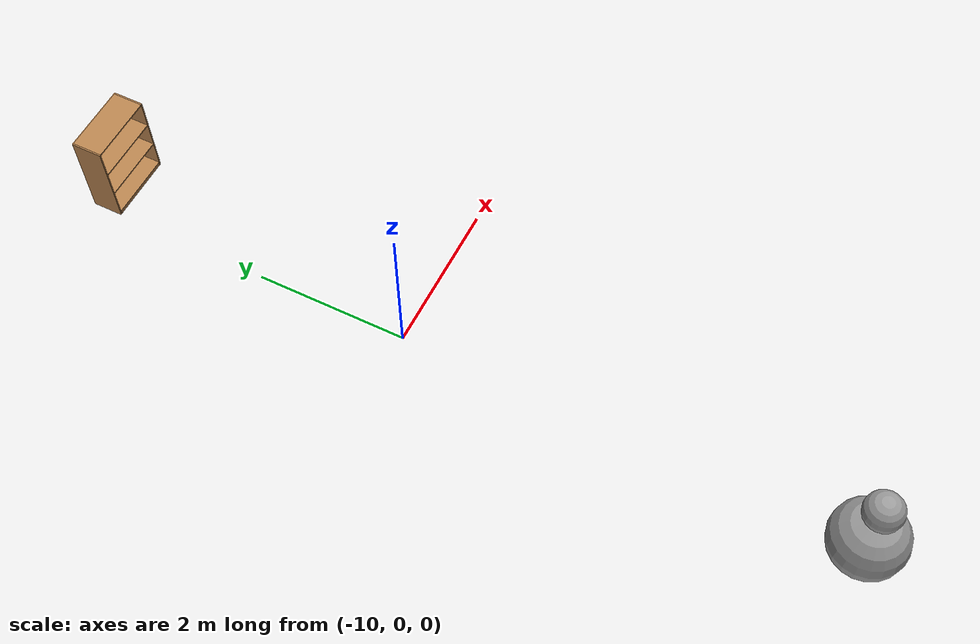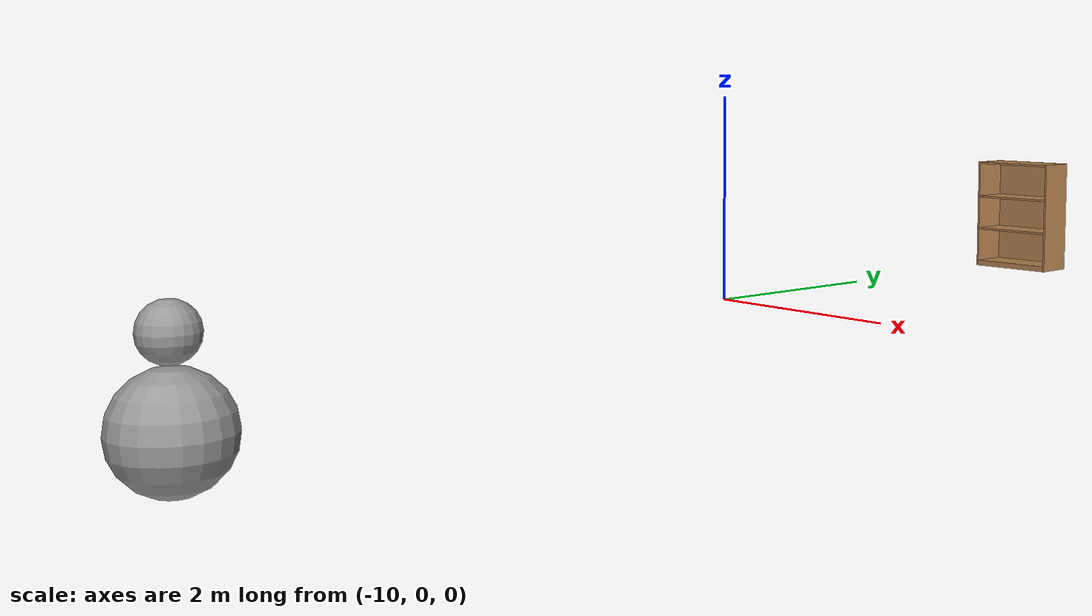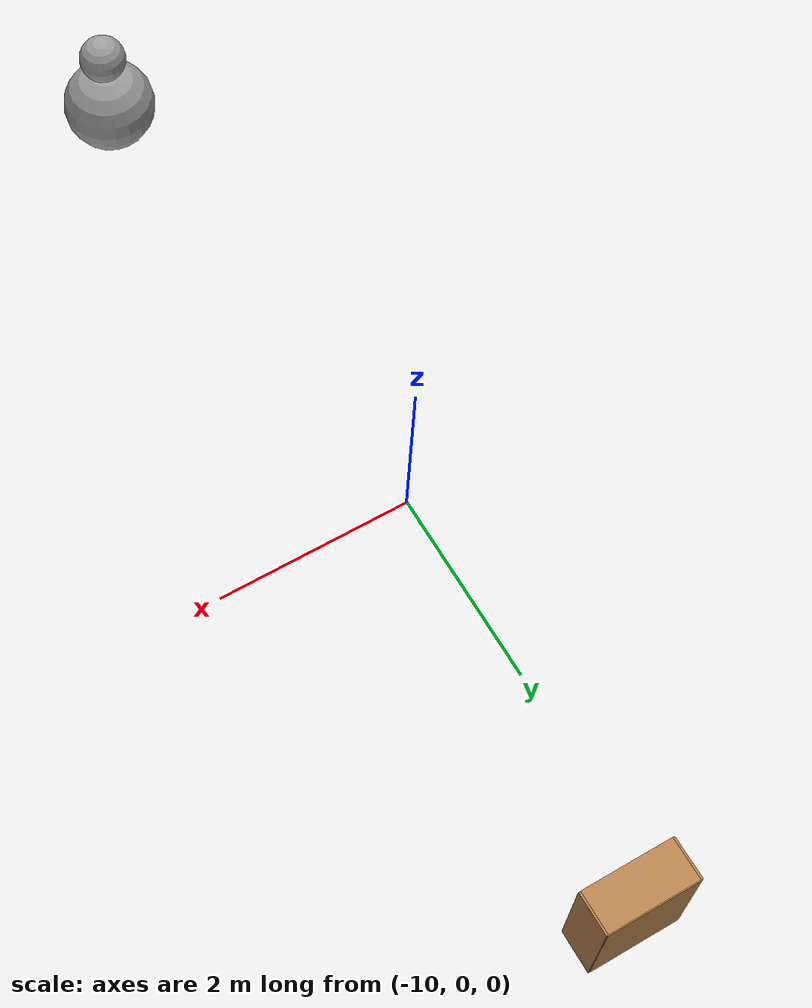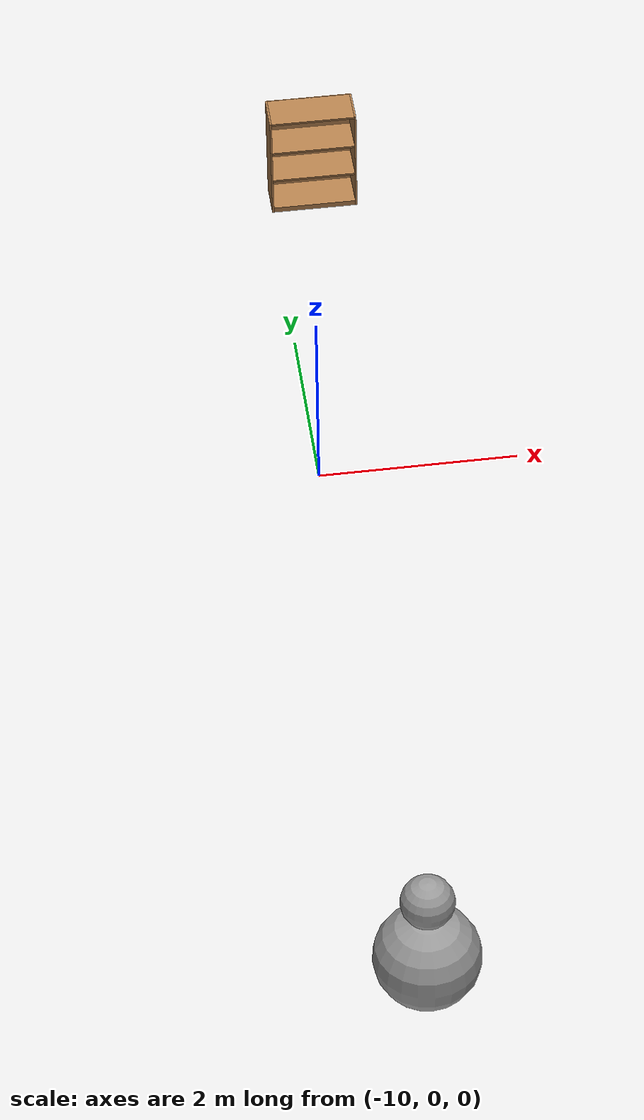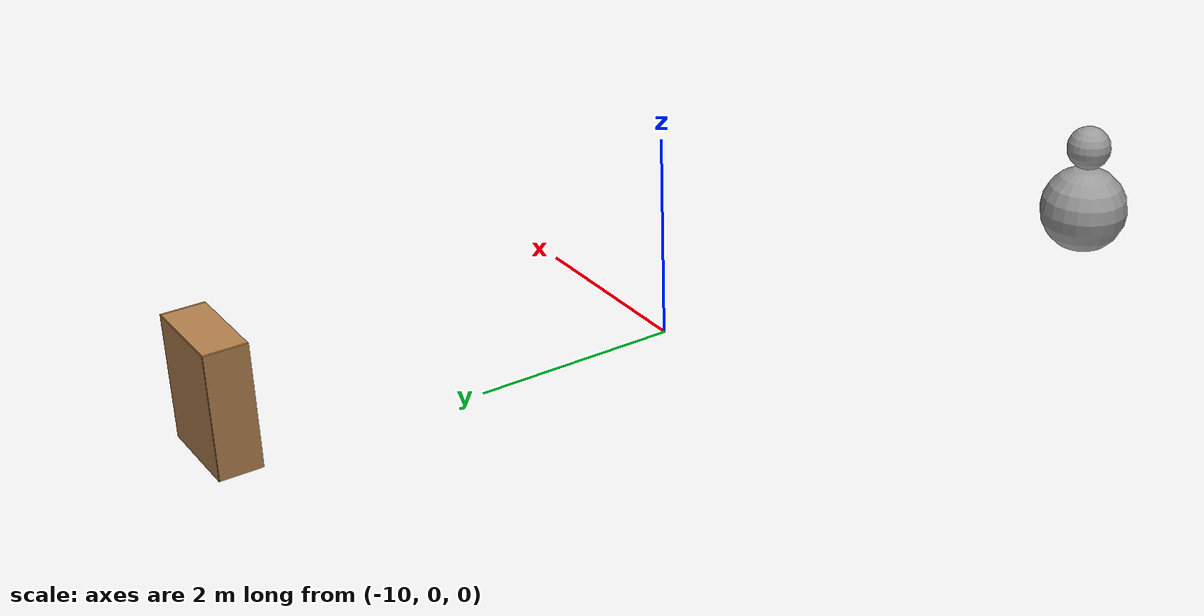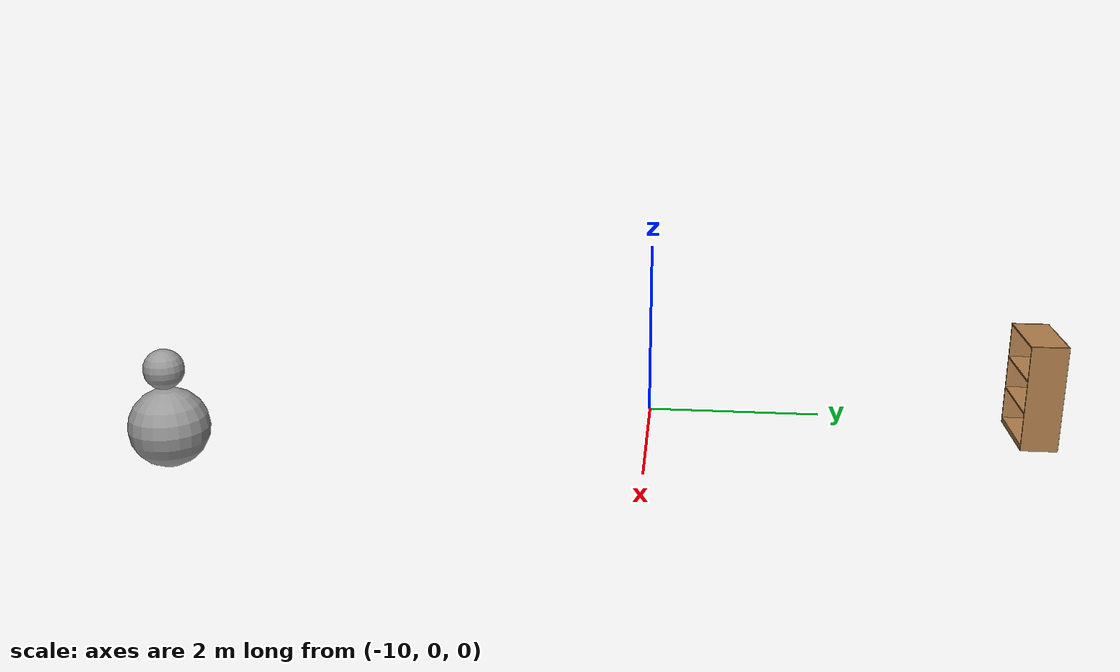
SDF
<?xml version='1.0'?>
<sdf version='1.6'>
  <model name='toppedSphere'>
    <model name='toppedSphere'>
      <model name='topped_balls'>
        <link name='link_0'>
          <inertial>
            <mass>1</mass>
            <inertia>
              <ixx>0.1</ixx>
              <ixy>0</ixy>
              <ixz>0</ixz>
              <iyy>0.1</iyy>
              <iyz>0</iyz>
              <izz>0.1</izz>
            </inertia>
            <pose frame=''>0 0 0 0 -0 0</pose>
          </inertial>
          <pose frame=''>0 0 -0.375 0 -0 0</pose>
          <self_collide>0</self_collide>
          <enable_wind>0</enable_wind>
          <kinematic>0</kinematic>
          <visual name='visual'>
            <pose frame=''>0 0 0 0 -0 0</pose>
            <geometry>
              <sphere>
                <radius>0.5</radius>
              </sphere>
            </geometry>
            <material>
              <lighting>1</lighting>
              <script>
                <uri>file://media/materials/scripts/gazebo.material</uri>
                <name>Gazebo/Grey</name>
              </script>
              <shader type='pixel'/>
              <emissive>0 0 0 1</emissive>
            </material>
            <transparency>0</transparency>
            <cast_shadows>1</cast_shadows>
          </visual>
          <collision name='collision'>
            <laser_retro>0</laser_retro>
            <max_contacts>10</max_contacts>
            <pose frame=''>0 0 0 0 -0 0</pose>
            <geometry>
              <sphere>
                <radius>0.5</radius>
              </sphere>
            </geometry>
            <surface>
              <friction>
                <ode>
                  <mu>1</mu>
                  <mu2>1</mu2>
                  <fdir1>0 0 0</fdir1>
                  <slip1>0</slip1>
                  <slip2>0</slip2>
                </ode>
                <torsional>
                  <coefficient>1</coefficient>
                  <patch_radius>0</patch_radius>
                  <surface_radius>0</surface_radius>
                  <use_patch_radius>1</use_patch_radius>
                  <ode>
                    <slip>0</slip>
                  </ode>
                </torsional>
              </friction>
              <bounce>
                <restitution_coefficient>0</restitution_coefficient>
                <threshold>1e+06</threshold>
              </bounce>
              <contact>
                <collide_without_contact>0</collide_without_contact>
                <collide_without_contact_bitmask>1</collide_without_contact_bitmask>
                <collide_bitmask>1</collide_bitmask>
                <ode>
                  <soft_cfm>0</soft_cfm>
                  <soft_erp>0.2</soft_erp>
                  <kp>1e+13</kp>
                  <kd>1</kd>
                  <max_vel>0.01</max_vel>
                  <min_depth>0</min_depth>
                </ode>
                <bullet>
                  <split_impulse>1</split_impulse>
                  <split_impulse_penetration_threshold>-0.01</split_impulse_penetration_threshold>
                  <soft_cfm>0</soft_cfm>
                  <soft_erp>0.2</soft_erp>
                  <kp>1e+13</kp>
                  <kd>1</kd>
                </bullet>
              </contact>
            </surface>
          </collision>
        </link>
        <link name='link_1'>
          <inertial>
            <mass>1</mass>
            <inertia>
              <ixx>0.1</ixx>
              <ixy>0</ixy>
              <ixz>0</ixz>
              <iyy>0.1</iyy>
              <iyz>0</iyz>
              <izz>0.1</izz>
            </inertia>
            <pose frame=''>0 0 0 0 -0 0</pose>
          </inertial>
          <pose frame=''>0 0 0.375 0 -0 0</pose>
          <gravity>1</gravity>
          <self_collide>0</self_collide>
          <kinematic>0</kinematic>
          <enable_wind>0</enable_wind>
          <visual name='visual'>
            <pose frame=''>0 0 0 0 -0 0</pose>
            <geometry>
              <sphere>
                <radius>0.25</radius>
              </sphere>
            </geometry>
            <material>
              <lighting>1</lighting>
              <script>
                <uri>file://media/materials/scripts/gazebo.material</uri>
                <name>Gazebo/Grey</name>
              </script>
              <shader type='pixel'>
                <normal_map>__default__</normal_map>
              </shader>
              <ambient>0.3 0.3 0.3 1</ambient>
              <diffuse>0.7 0.7 0.7 1</diffuse>
              <specular>0.01 0.01 0.01 1</specular>
              <emissive>0 0 0 1</emissive>
            </material>
            <transparency>0</transparency>
            <cast_shadows>1</cast_shadows>
          </visual>
          <collision name='collision'>
            <laser_retro>0</laser_retro>
            <max_contacts>10</max_contacts>
            <pose frame=''>0 0 0 0 -0 0</pose>
            <geometry>
              <sphere>
                <radius>0.25</radius>
              </sphere>
            </geometry>
            <surface>
              <friction>
                <ode>
                  <mu>1</mu>
                  <mu2>1</mu2>
                  <fdir1>0 0 0</fdir1>
                  <slip1>0</slip1>
                  <slip2>0</slip2>
                </ode>
                <torsional>
                  <coefficient>1</coefficient>
                  <patch_radius>0</patch_radius>
                  <surface_radius>0</surface_radius>
                  <use_patch_radius>1</use_patch_radius>
                  <ode>
                    <slip>0</slip>
                  </ode>
                </torsional>
              </friction>
              <bounce>
                <restitution_coefficient>0</restitution_coefficient>
                <threshold>1e+06</threshold>
              </bounce>
              <contact>
                <collide_without_contact>0</collide_without_contact>
                <collide_without_contact_bitmask>1</collide_without_contact_bitmask>
                <collide_bitmask>1</collide_bitmask>
                <ode>
                  <soft_cfm>0</soft_cfm>
                  <soft_erp>0.2</soft_erp>
                  <kp>1e+13</kp>
                  <kd>1</kd>
                  <max_vel>0.01</max_vel>
                  <min_depth>0</min_depth>
                </ode>
                <bullet>
                  <split_impulse>1</split_impulse>
                  <split_impulse_penetration_threshold>-0.01</split_impulse_penetration_threshold>
                  <soft_cfm>0</soft_cfm>
                  <soft_erp>0.2</soft_erp>
                  <kp>1e+13</kp>
                  <kd>1</kd>
                </bullet>
              </contact>
            </surface>
          </collision>
        </link>
        <joint name='link_0_JOINT_0' type='fixed'>
          <parent>link_0</parent>
          <child>link_1</child>
          <pose frame=''>0 0 0 0 -0 0</pose>
          <physics>
            <ode>
              <limit>
                <cfm>0</cfm>
                <erp>0.2</erp>
              </limit>
              <suspension>
                <cfm>0</cfm>
                <erp>0.2</erp>
              </suspension>
            </ode>
          </physics>
        </joint>
        <static>0</static>
        <allow_auto_disable>1</allow_auto_disable>
        <pose frame=''>-0 0 0 0 -0 0</pose>
      </model>
      <static>0</static>
      <allow_auto_disable>1</allow_auto_disable>
      <pose frame=''>-9.79218 -5.9397 0 0 -0 0</pose>
    </model>
    <model name='bookshelf'>
      <static>1</static>
      <link name='link'>
        <inertial>
          <mass>1</mass>
        </inertial>
        <collision name='back'>
          <pose frame=''>0 0.005 0.6 0 -0 0</pose>
          <geometry>
            <box>
              <size>0.9 0.01 1.2</size>
            </box>
          </geometry>
        </collision>
        <visual name='visual1'>
          <pose frame=''>0 0.005 0.6 0 -0 0</pose>
          <geometry>
            <box>
              <size>0.9 0.01 1.2</size>
            </box>
          </geometry>
          <material>
            <script>
              <uri>file://media/materials/scripts/gazebo.material</uri>
              <name>Gazebo/Wood</name>
            </script>
          </material>
        </visual>
        <collision name='left_side'>
          <pose frame=''>0.45 -0.195 0.6 0 -0 0</pose>
          <geometry>
            <box>
              <size>0.02 0.4 1.2</size>
            </box>
          </geometry>
        </collision>
        <visual name='visual2'>
          <pose frame=''>0.45 -0.195 0.6 0 -0 0</pose>
          <geometry>
            <box>
              <size>0.02 0.4 1.2</size>
            </box>
          </geometry>
          <material>
            <script>
              <uri>file://media/materials/scripts/gazebo.material</uri>
              <name>Gazebo/Wood</name>
            </script>
          </material>
        </visual>
        <collision name='right_side'>
          <pose frame=''>-0.45 -0.195 0.6 0 -0 0</pose>
          <geometry>
            <box>
              <size>0.02 0.4 1.2</size>
            </box>
          </geometry>
        </collision>
        <visual name='visual3'>
          <pose frame=''>-0.45 -0.195 0.6 0 -0 0</pose>
          <geometry>
            <box>
              <size>0.02 0.4 1.2</size>
            </box>
          </geometry>
          <material>
            <script>
              <uri>file://media/materials/scripts/gazebo.material</uri>
              <name>Gazebo/Wood</name>
            </script>
          </material>
        </visual>
        <collision name='bottom'>
          <pose frame=''>0 -0.195 0.03 0 -0 0</pose>
          <geometry>
            <box>
              <size>0.88 0.4 0.06</size>
            </box>
          </geometry>
        </collision>
        <visual name='visual4'>
          <pose frame=''>0 -0.195 0.03 0 -0 0</pose>
          <geometry>
            <box>
              <size>0.88 0.4 0.06</size>
            </box>
          </geometry>
          <material>
            <script>
              <uri>file://media/materials/scripts/gazebo.material</uri>
              <name>Gazebo/Wood</name>
            </script>
          </material>
        </visual>
        <collision name='top'>
          <pose frame=''>0 -0.195 1.19 0 -0 0</pose>
          <geometry>
            <box>
              <size>0.88 0.4 0.02</size>
            </box>
          </geometry>
        </collision>
        <visual name='visual5'>
          <pose frame=''>0 -0.195 1.19 0 -0 0</pose>
          <geometry>
            <box>
              <size>0.88 0.4 0.02</size>
            </box>
          </geometry>
          <material>
            <script>
              <uri>file://media/materials/scripts/gazebo.material</uri>
              <name>Gazebo/Wood</name>
            </script>
          </material>
        </visual>
        <collision name='low_shelf'>
          <pose frame=''>0 -0.195 0.43 0 -0 0</pose>
          <geometry>
            <box>
              <size>0.88 0.4 0.02</size>
            </box>
          </geometry>
        </collision>
        <visual name='visual6'>
          <pose frame=''>0 -0.195 0.43 0 -0 0</pose>
          <geometry>
            <box>
              <size>0.88 0.4 0.02</size>
            </box>
          </geometry>
          <material>
            <script>
              <uri>file://media/materials/scripts/gazebo.material</uri>
              <name>Gazebo/Wood</name>
            </script>
          </material>
        </visual>
        <collision name='high_shelf'>
          <pose frame=''>0 -0.195 0.8 0 -0 0</pose>
          <geometry>
            <box>
              <size>0.88 0.4 0.02</size>
            </box>
          </geometry>
        </collision>
        <visual name='visual7'>
          <pose frame=''>0 -0.195 0.8 0 -0 0</pose>
          <geometry>
            <box>
              <size>0.88 0.4 0.02</size>
            </box>
          </geometry>
          <material>
            <script>
              <uri>file://media/materials/scripts/gazebo.material</uri>
              <name>Gazebo/Wood</name>
            </script>
          </material>
        </visual>
      </link>
      <pose frame=''>-9.52154 4.51419 0 0 -0 0</pose>
    </model>
    <static>0</static>
    <allow_auto_disable>1</allow_auto_disable>
  </model>
</sdf>
